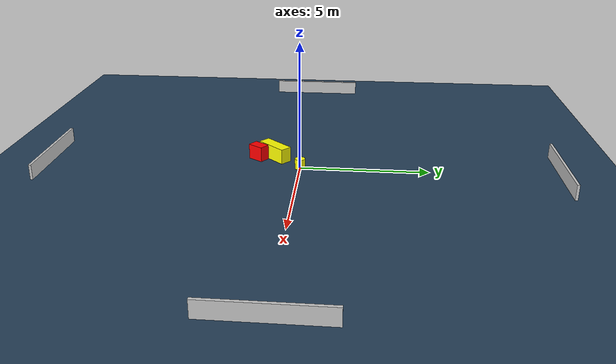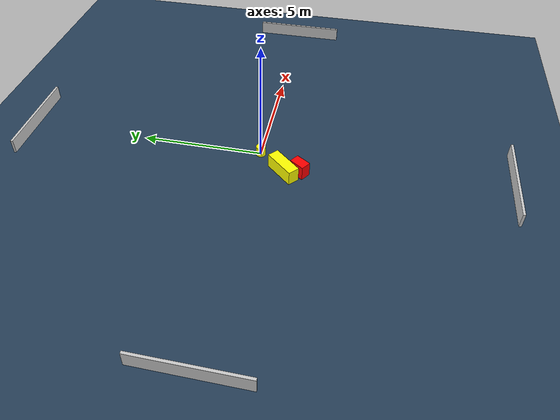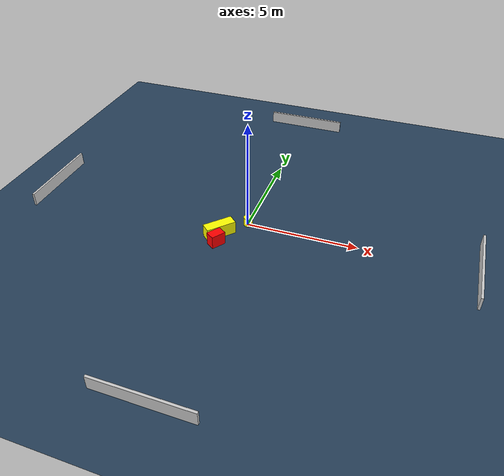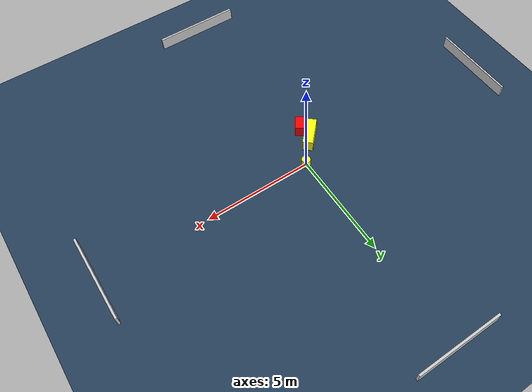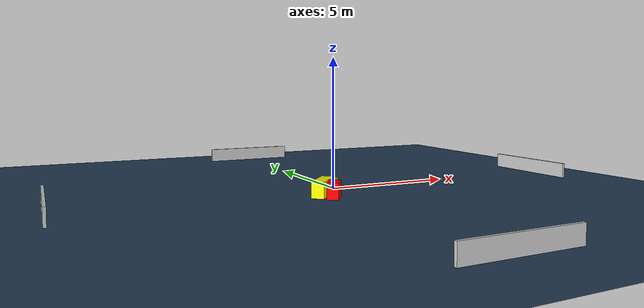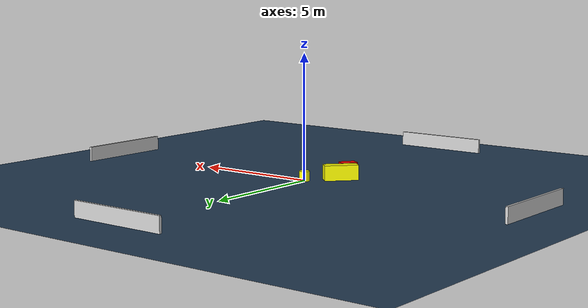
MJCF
<?xml version="1.0" ?>
<mujoco model="generated_environment">
  <option timestep="0.01" integrator="RK4" cone="elliptic"/>
  <default>
    <geom density="1"/>
  </default>
  <asset>
    <texture builtin="gradient" height="3072" name="skybox" rgb1="0.3 0.5 0.7" rgb2="0 0 0" type="skybox" width="512"/>
    <texture builtin="checker" height="300" name="groundplane" rgb1="0.2 0.3 0.4" rgb2="0.1 0.2 0.3" type="2d" width="300"/>
    <material name="groundplane" reflectance="0.2" texrepeat="5 5" texture="groundplane"/>
  </asset>
  <worldbody>
    <light dir="0 0 -1" directional="true" pos="0 0 1.5"/>
    <geom condim="3" friction="0.5 0.005 0.001" material="groundplane" name="floor" pos="0 0 0" size="0 0 0.05" type="plane"/>
    <body name="walls">
      <geom name="wall_1" condim="4" pos="-10.0 0.0 0.3" rgba="0.800000011920929 0.800000011920929 0.800000011920929 1.0" size="0.05 2.0 0.3" type="box"/>
      <geom name="wall_2" condim="4" pos="10.0 0.0 0.3" rgba="0.800000011920929 0.800000011920929 0.800000011920929 1.0" size="0.05 2.0 0.3" type="box"/>
      <geom name="wall_3" condim="4" pos="0.0 -10.0 0.3" rgba="0.800000011920929 0.800000011920929 0.800000011920929 1.0" size="2.0 0.05 0.3" type="box"/>
      <geom name="wall_4" condim="4" pos="0.0 10.0 0.3" rgba="0.800000011920929 0.800000011920929 0.800000011920929 1.0" size="2.0 0.05 0.3" type="box"/>
    </body>
    <body name="robot">
      <joint name="joint_x" type="slide" pos="0 0 0" axis="1 0 0"/>
      <joint name="joint_y" type="slide" pos="0 0 0" axis="0 1 0"/>
      <geom name="robot" type="cylinder" pos="0.0 0.0 0.2" size="0.2 0.2 0.0" mass="5.0" friction="1.0 0.005 0.0001" condim="4" rgba="1.0 1.0 0.0 1.0"/>
    </body>
    <body name="obstacle_1_movable">
      <geom name="obstacle_1_movable" condim="4" pos="-0.9463620023540114 -1.094624804189542 0.3" euler="0 0 317.57283924033237" friction="0.0 0.005 0.001" rgba="1.0 1.0 0.0 1.0" size="0.23740186563144444 0.6750044839259102 0.3" type="box" mass="0.1"/>
      <joint type="free"/>
    </body>
    <body name="obstacle_2_static">
      <geom name="obstacle_2_static" condim="4" pos="-0.8340865046038102 -1.7413227269835656 0.3" euler="0 0 325.1320854567143" friction="0.0 0.005 0.001" rgba="1.0 0.0 0.0 1.0" size="0.21293227537279424 0.32751417309202885 0.3" type="box"/>
    </body>
  </worldbody>
  <actuator>
    <motor name="actuator_x" joint="joint_x" gear="1" ctrlrange="-1 1"/>
    <motor name="actuator_y" joint="joint_y" gear="1" ctrlrange="-1 1"/>
  </actuator>
</mujoco>
